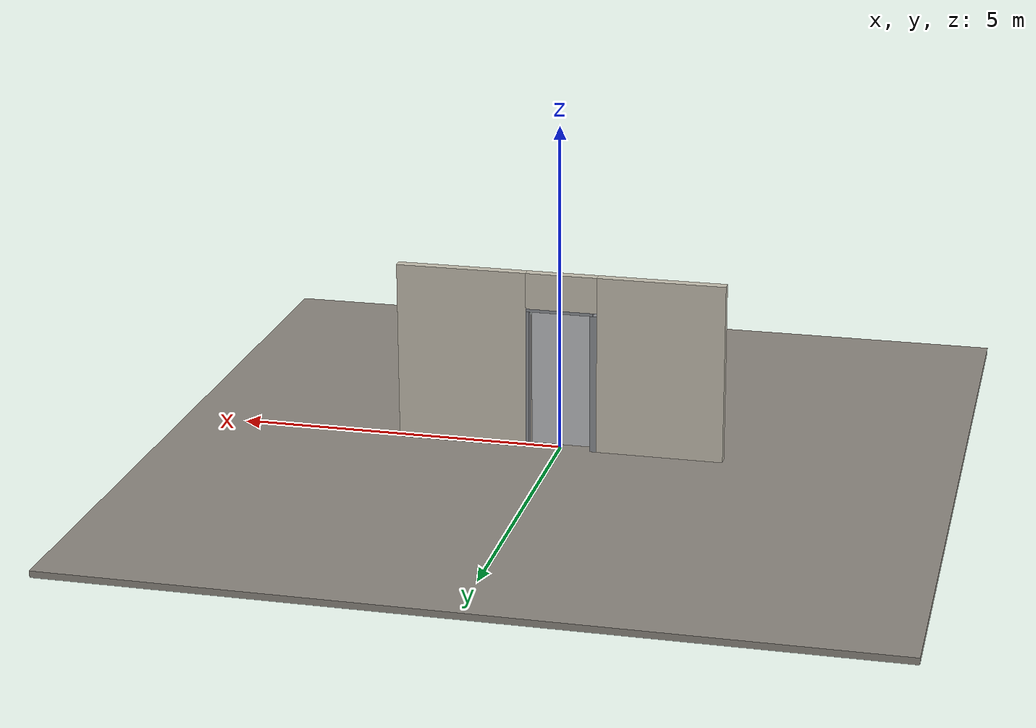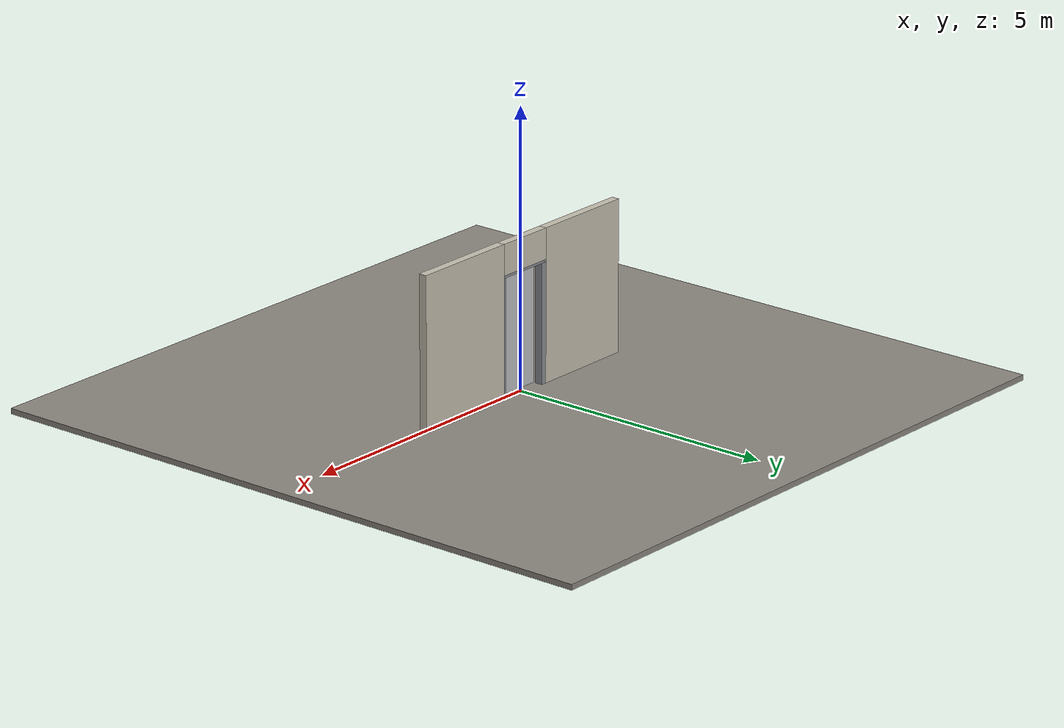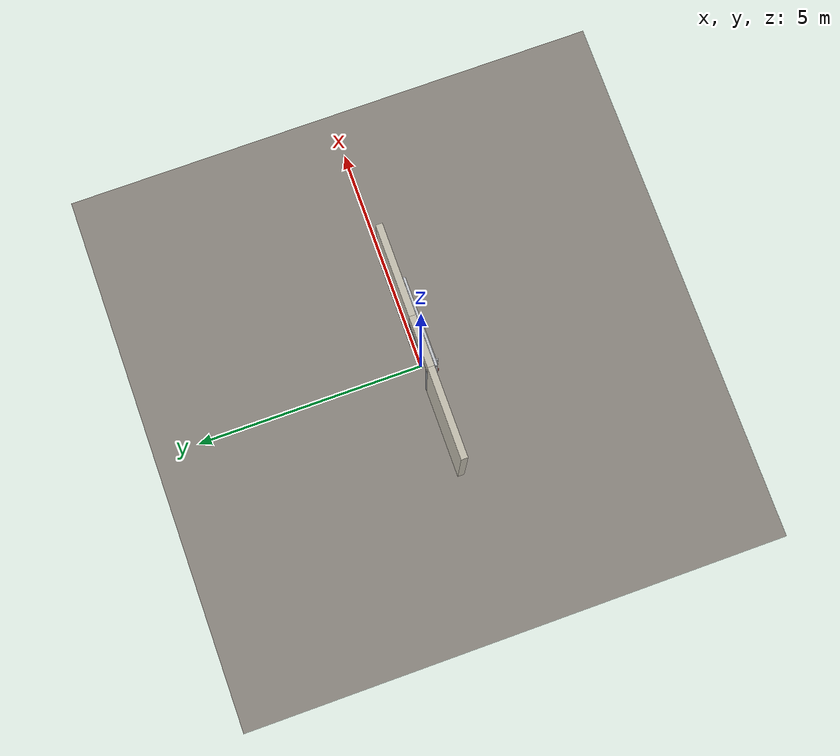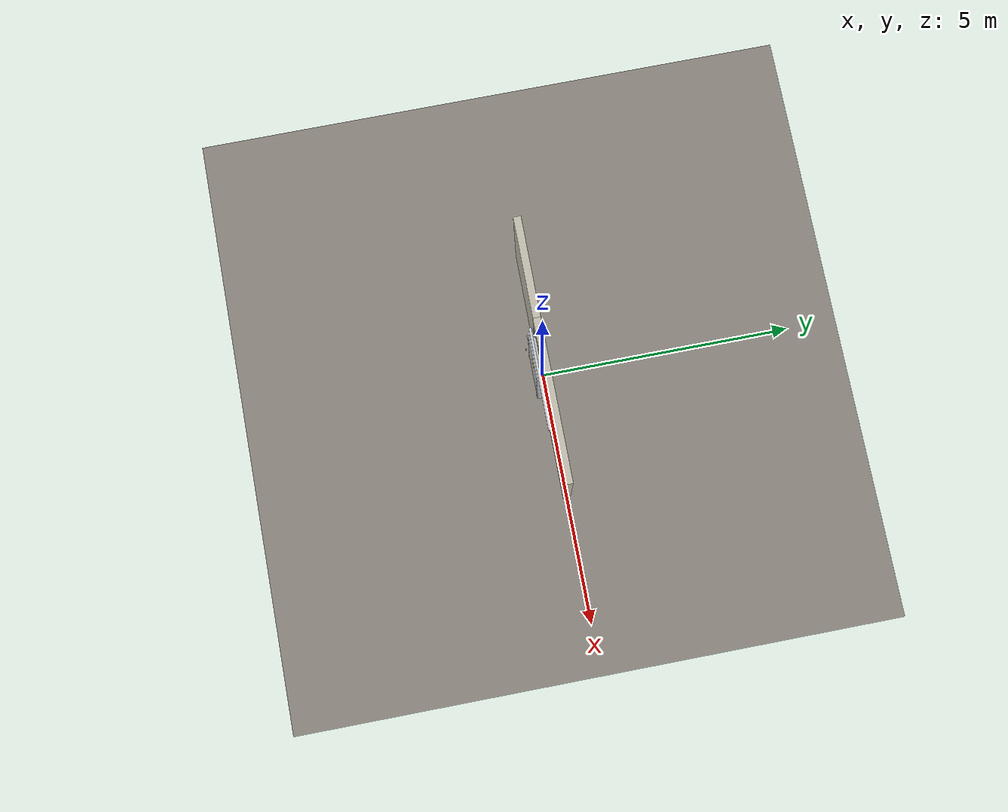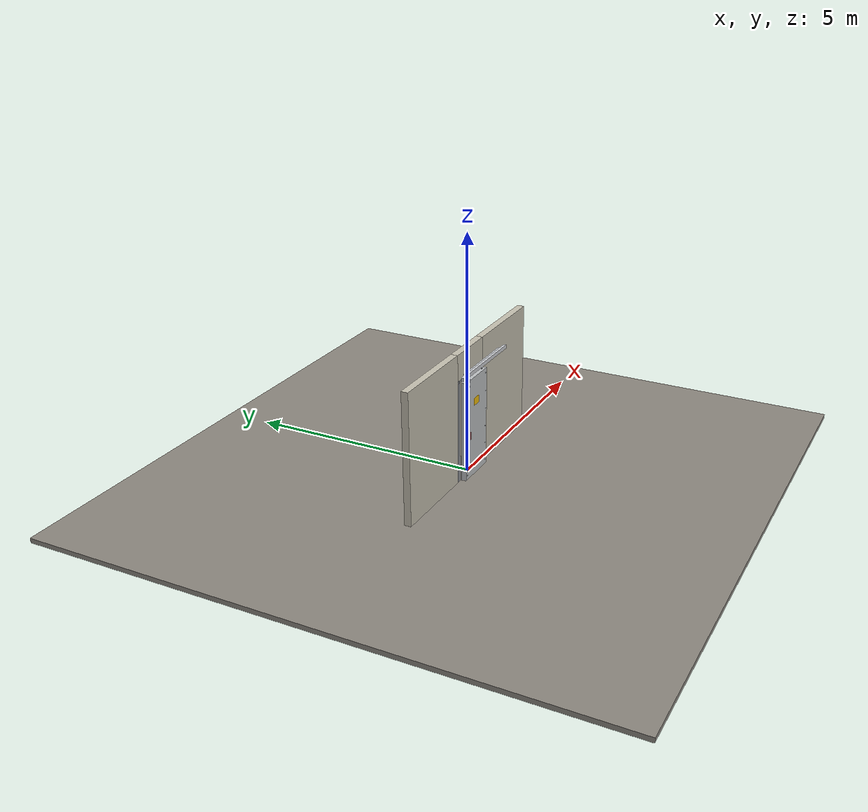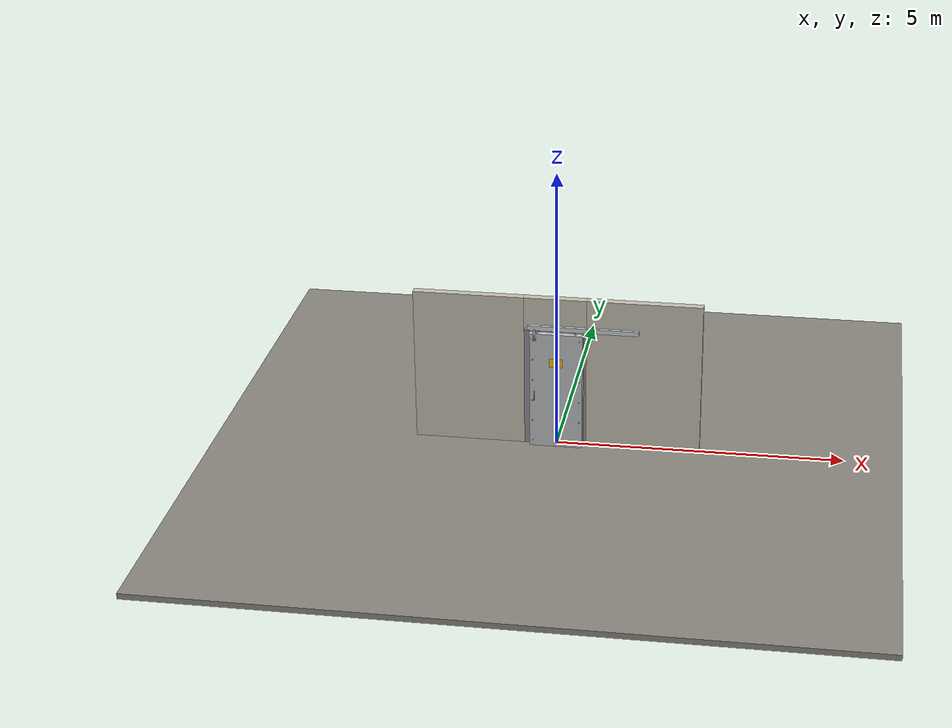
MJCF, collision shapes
<?xml version="1.0" ?>
<mujoco model="db0597_sliding_single_full">
  <compiler angle="radian" meshdir="../../hardware" texturedir="../../textures" autolimits="true" inertiafromgeom="false"/>
  <option timestep="0.002" integrator="implicitfast" cone="elliptic" impratio="10" noslip_iterations="3">
    <flag multiccd="enable"/>
  </option>
  <size memory="16M"/>
  <default>
    <geom condim="4" solref="0.005 1" solimp="0.95 0.99 0.001"/>
    <joint solreflimit="0.005 1" solimplimit="0.95 0.99 0.001"/>
    <tendon solreflimit="0.005 1"/>
    <equality solref="0.002 1"/>
  </default>
  <visual>
    <headlight ambient="0.4 0.4 0.4" diffuse="0.7 0.7 0.7" specular="0.2 0.2 0.2"/>
    <quality shadowsize="4096"/>
    <map znear="0.01" zfar="60"/>
  </visual>
  <asset>
    <mesh name="pull_1e5d69a91a" file="pull_1e5d69a91a.obj"/>
    <material name="mat_floor" rgba="0.55 0.53 0.5 1" specular="0.2" shininess="0.15" reflectance="0"/>
    <material name="mat_wall" rgba="0.78 0.76 0.7 1" specular="0.2" shininess="0.1" reflectance="0"/>
    <material name="mat_frame" rgba="0.55 0.56 0.58 1" specular="0.8" shininess="0.55" reflectance="0.4"/>
    <material name="mat_track" rgba="0.8 0.81 0.83 1" specular="0.8" shininess="0.6" reflectance="0.4"/>
    <material name="mat_leaf" rgba="0.75 0.76 0.77 1" specular="0.8" shininess="0.65" reflectance="0.4"/>
    <material name="mat_rivet" rgba="0.55 0.56 0.58 1" specular="0.8" shininess="0.55" reflectance="0.4"/>
    <material name="mat_roller" rgba="0.65 0.66 0.68 1" specular="0.74" shininess="0.5" reflectance="0.36"/>
    <material name="mat_ebolt" rgba="0.75 0.76 0.77 1" specular="0.8" shininess="0.65" reflectance="0.4"/>
    <material name="mat_op_stainless" rgba="0.75 0.76 0.77 1" specular="0.8" shininess="0.65" reflectance="0.4"/>
    <material name="mat_hook" rgba="0.75 0.76 0.77 1" specular="0.8" shininess="0.65" reflectance="0.4"/>
    <material name="mat_placard" rgba="0.95 0.75 0.05 1" specular="0.2" shininess="0.5" reflectance="0"/>
    <texture name="skybox" type="skybox" builtin="gradient" rgb1="0.6 0.7 0.85" rgb2="0.9 0.92 0.95" width="256" height="256"/>
  </asset>
  <worldbody>
    <light name="sun" pos="1.5 -2.5 4" dir="-0.3 0.5 -0.8" directional="true" diffuse="0.8 0.8 0.8" specular="0.3 0.3 0.3" castshadow="true"/>
    <light name="fill" pos="-1.5 2.5 3" dir="0.3 -0.5 -0.7" directional="true" diffuse="0.35 0.35 0.4" castshadow="false"/>
    <camera name="robot_view" pos="0 -2.644375 1.817425" xyaxes="1 0 0 0 0.26963 0.962964" fovy="52"/>
    <camera name="far_view" pos="0 2.644375 1.817425" xyaxes="-1 0 0 0 -0.26963 0.962964" fovy="52"/>
    <camera name="iso" pos="2.009725 -2.221275 2.240525" xyaxes="0.741536 0.670913 0 -0.242917 0.268487 0.932151" fovy="46"/>
    <camera name="detail_handle" pos="-0.187 -1.0525 1.28" xyaxes="0.97561 0.219512 0 -0.070934 0.315262 0.94635" fovy="38"/>
    <geom name="floor" type="box" size="6 6 0.05" pos="0 0 -0.05" material="mat_floor" group="0" contype="1" conaffinity="1" friction="0.8 0.005 0.0001" density="2400"/>
    <geom name="wall_left" type="box" size="0.964 0.0725 1.377" pos="-1.536 0 1.377" material="mat_wall" group="0" contype="1" conaffinity="1" friction="0.6 0.005 0.0001" density="800"/>
    <geom name="wall_right" type="box" size="0.994 0.0725 1.377" pos="1.506 0 1.377" material="mat_wall" group="0" contype="1" conaffinity="1" friction="0.6 0.005 0.0001" density="800"/>
    <geom name="wall_header" type="box" size="0.542 0.0725 0.2775" pos="-0.03 0 2.4765" material="mat_wall" group="0" contype="1" conaffinity="1" friction="0.6 0.005 0.0001" density="800"/>
    <geom name="jamb_r" type="box" size="0.0225 0.0725 1.077" pos="0.4895 0 1.077" material="mat_frame" group="0" contype="1" conaffinity="1" friction="0.6 0.005 0.0001" density="300"/>
    <geom name="jamb_head" type="box" size="0.512 0.0725 0.0225" pos="0 0 2.1765" material="mat_frame" group="0" contype="1" conaffinity="1" friction="0.6 0.005 0.0001" density="300"/>
    <geom name="track_header" type="box" size="0.964 0.025 0.04" pos="0.457 -0.1425 2.239" material="mat_track" group="0" contype="1" conaffinity="1" friction="0.6 0.005 0.0001" density="2700"/>
    <geom name="leaf_electric_bolt_housing" type="box" size="0.022 0.014 0.045" pos="-0.377 -0.2105 2.176" material="mat_ebolt" group="1" contype="0" conaffinity="0" density="7900"/>
    <geom name="leaf_electric_bolt_hanger" type="box" size="0.016 0.0155 0.012" pos="-0.377 -0.183 2.209" material="mat_ebolt" group="1" contype="0" conaffinity="0" density="7900"/>
    <geom name="jamb_latch_0" type="box" size="0.0525 0.0725 1.077" pos="-0.5195 0 1.077" material="mat_frame" group="0" contype="1" conaffinity="1" friction="0.6 0.005 0.0001" density="300"/>
    <geom name="track_header_bracket" type="box" size="0.7712 0.023 0.032" pos="0.457 -0.095 2.239" material="mat_hook" group="1" contype="0" conaffinity="0" density="7850"/>
    <site name="approach_point" pos="0 -1.5 0" quat="1 0 0 0" size="0.05" rgba="0.2 0.9 0.2 0.5" group="4"/>
    <site name="goal_point" pos="0 1.5 0" quat="1 0 0 0" size="0.05" rgba="0.2 0.9 0.2 0.5" group="4"/>
    <site name="door_plane_center" pos="0 0 1.077" quat="1 0 0 0" size="0.02" rgba="0.2 0.9 0.2 0.5" group="4"/>
    <body name="leaf" pos="0 -0.1425 0">
      <inertial pos="-0.006211 -0.002206 1.104286" mass="45.063579" quat="0.500271 -0.496396 -0.503197 -0.500112" diaginertia="3.322822036 17.754917737 20.991999743"/>
      <joint name="leaf_slide" type="slide" axis="1 0 0" limited="true" range="0 0.914" damping="4.260697" frictionloss="8.867947" armature="0.5"/>
      <geom name="leaf_slab" type="box" size="0.457 0.05 1.067" pos="0 0 1.079" material="mat_leaf" group="0" contype="1" conaffinity="1" friction="0.35 0.005 0.0001" density="1"/>
      <geom name="leaf_rivet_0_0" type="sphere" size="0.012" pos="-0.407 -0.05 0.112" material="mat_rivet" group="2" contype="0" conaffinity="0" density="7850"/>
      <geom name="leaf_rivet_0_1" type="sphere" size="0.012" pos="0.407 -0.05 0.112" material="mat_rivet" group="2" contype="0" conaffinity="0" density="7850"/>
      <geom name="leaf_rivet_1_0" type="sphere" size="0.012" pos="-0.407 -0.05 0.4988" material="mat_rivet" group="2" contype="0" conaffinity="0" density="7850"/>
      <geom name="leaf_rivet_1_1" type="sphere" size="0.012" pos="0.407 -0.05 0.4988" material="mat_rivet" group="2" contype="0" conaffinity="0" density="7850"/>
      <geom name="leaf_rivet_2_0" type="sphere" size="0.012" pos="-0.407 -0.05 0.8856" material="mat_rivet" group="2" contype="0" conaffinity="0" density="7850"/>
      <geom name="leaf_rivet_2_1" type="sphere" size="0.012" pos="0.407 -0.05 0.8856" material="mat_rivet" group="2" contype="0" conaffinity="0" density="7850"/>
      <geom name="leaf_rivet_3_0" type="sphere" size="0.012" pos="-0.407 -0.05 1.2724" material="mat_rivet" group="2" contype="0" conaffinity="0" density="7850"/>
      <geom name="leaf_rivet_3_1" type="sphere" size="0.012" pos="0.407 -0.05 1.2724" material="mat_rivet" group="2" contype="0" conaffinity="0" density="7850"/>
      <geom name="leaf_rivet_4_0" type="sphere" size="0.012" pos="-0.407 -0.05 1.6592" material="mat_rivet" group="2" contype="0" conaffinity="0" density="7850"/>
      <geom name="leaf_rivet_4_1" type="sphere" size="0.012" pos="0.407 -0.05 1.6592" material="mat_rivet" group="2" contype="0" conaffinity="0" density="7850"/>
      <geom name="leaf_rivet_5_0" type="sphere" size="0.012" pos="-0.407 -0.05 2.046" material="mat_rivet" group="2" contype="0" conaffinity="0" density="7850"/>
      <geom name="leaf_rivet_5_1" type="sphere" size="0.012" pos="0.407 -0.05 2.046" material="mat_rivet" group="2" contype="0" conaffinity="0" density="7850"/>
      <geom name="leaf_carrier_0" type="box" size="0.02 0.005 0.0545" pos="-0.337 0 2.1405" material="mat_roller" group="1" contype="0" conaffinity="0" density="7850"/>
      <geom name="leaf_carrier_wheel_0" type="cylinder" size="0.014 0.006" pos="-0.337 0 2.185" quat="0.707107 -0.707107 0 0" material="mat_roller" group="1" contype="0" conaffinity="0" density="7850"/>
      <geom name="leaf_carrier_1" type="box" size="0.02 0.005 0.0545" pos="0.337 0 2.1405" material="mat_roller" group="1" contype="0" conaffinity="0" density="7850"/>
      <geom name="leaf_carrier_wheel_1" type="cylinder" size="0.014 0.006" pos="0.337 0 2.185" quat="0.707107 -0.707107 0 0" material="mat_roller" group="1" contype="0" conaffinity="0" density="7850"/>
      <geom name="leaf_ebolt_keeper_n" type="box" size="0.006 0.014 0.02" pos="-0.395 -0.064 2.046" material="mat_ebolt" group="0" contype="1" conaffinity="1" friction="0.6 0.005 0.0001" density="7900"/>
      <geom name="leaf_ebolt_keeper_p" type="box" size="0.006 0.014 0.02" pos="-0.359 -0.064 2.046" material="mat_ebolt" group="0" contype="1" conaffinity="1" friction="0.6 0.005 0.0001" density="7900"/>
      <geom name="leaf_ebolt_keeper_base" type="box" size="0.03 0.002 0.03" pos="-0.377 -0.052 2.046" material="mat_ebolt" group="1" contype="0" conaffinity="0" density="7900"/>
      <geom name="leaf_pull_n" type="mesh" mesh="pull_1e5d69a91a" pos="-0.367 -0.05 1" quat="0 0 -0.707107 0.707107" material="mat_op_stainless" group="1" contype="0" conaffinity="0" density="3000"/>
      <geom name="leaf_pull_col_n" type="capsule" size="0.0095 0.08" pos="-0.367 -0.11 1" material="mat_op_stainless" group="3" contype="1" conaffinity="1" rgba="0.8 0.3 0.3 0.25" friction="0.7 0.01 0.0001" density="3000"/>
      <geom name="warning_placard" type="box" size="0.11 0.001 0.08" pos="0 -0.051 1.6125" material="mat_placard" group="2" contype="0" conaffinity="0" density="1000"/>
      <site name="leaf_pull_grip_n" pos="-0.367 -0.11 1" quat="1 0 0 0" size="0.012" rgba="0.2 0.9 0.2 0.5" group="4"/>
      <site name="leaf_edge_mid" pos="-0.457 0 1.079" quat="1 0 0 0" size="0.02" rgba="0.2 0.9 0.2 0.5" group="4"/>
    </body>
    <body name="leaf_electric_bolt" pos="-0.377 -0.2065 2.081">
      <inertial pos="0 0 0" mass="0.150368" quat="0.707107 0 0.707107 0" diaginertia="0.000004703 0.000115179 0.000115179"/>
      <joint name="leaf_electric_bolt_slide" type="slide" axis="0 0 1" limited="true" range="0 0.04" damping="5" frictionloss="2" armature="0.1"/>
      <geom name="leaf_electric_bolt_geom" type="capsule" size="0.008 0.042" pos="0 0 0" material="mat_ebolt" group="0" contype="1" conaffinity="1" friction="0.4 0.005 0.0001" density="7900"/>
    </body>
  </worldbody>
  <sensor>
    <jointpos name="leaf_slide_pos" joint="leaf_slide"/>
    <jointvel name="leaf_slide_vel" joint="leaf_slide"/>
    <jointpos name="leaf_electric_bolt_slide_pos" joint="leaf_electric_bolt_slide"/>
    <jointvel name="leaf_electric_bolt_slide_vel" joint="leaf_electric_bolt_slide"/>
  </sensor>
</mujoco>
